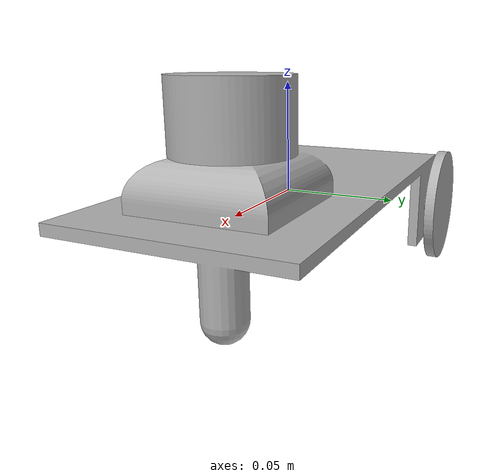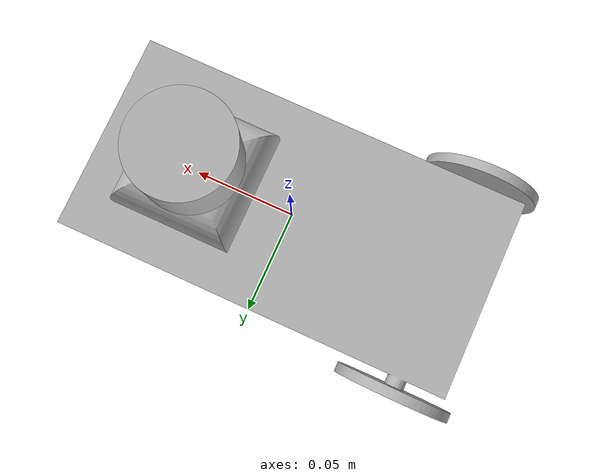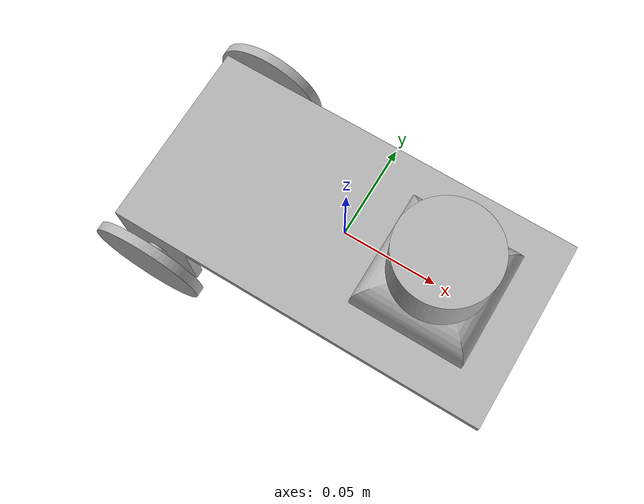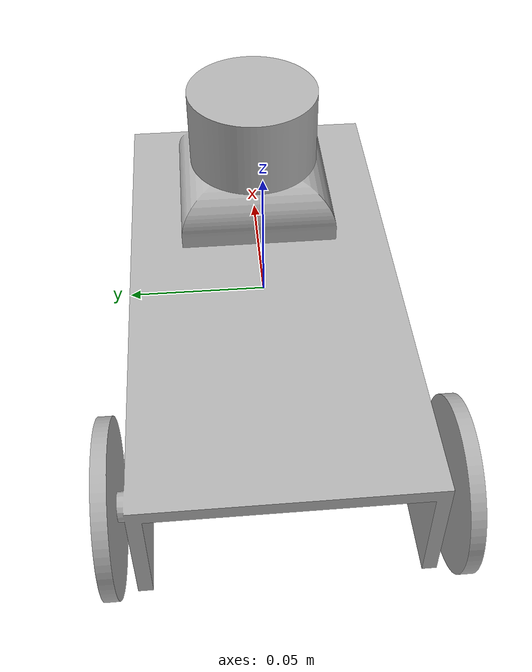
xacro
<?xml version="1.0" ?>
<robot name="testprojectmr" xmlns:xacro="http://www.ros.org/wiki/xacro">

<xacro:include filename="$(find testprojectmr_description)/urdf/materials.xacro" />
<xacro:include filename="$(find testprojectmr_description)/urdf/testprojectmr.trans" />
<xacro:include filename="$(find testprojectmr_description)/urdf/testprojectmr.gazebo" />
<link name="base_link">
  <inertial>
    <origin xyz="0.013575333281833109 -2.3543507324461306e-17 0.002227611071885382" rpy="0 0 0"/>
    <mass value="1.5162425271912718"/>
    <inertia ixx="0.001348" iyy="0.005216" izz="0.006043" ixy="-0.0" iyz="-0.0" ixz="-0.000341"/>
  </inertial>
  <visual>
    <origin xyz="0 0 0" rpy="0 0 0"/>
    <geometry>
      <mesh filename="package://testprojectmr_description/meshes/base_link.stl" scale="0.001 0.001 0.001"/>
    </geometry>
    <material name="silver"/>
  </visual>
  <collision>
    <origin xyz="0 0 0" rpy="0 0 0"/>
    <geometry>
      <mesh filename="package://testprojectmr_description/meshes/base_link.stl" scale="0.001 0.001 0.001"/>
    </geometry>
  </collision>
</link>

<link name="left_1">
  <inertial>
    <origin xyz="0.0 0.0025000000000000022 -3.469446951953614e-18" rpy="0 0 0"/>
    <mass value="0.11097676048805946"/>
    <inertia ixx="2.5e-05" iyy="5e-05" izz="2.5e-05" ixy="0.0" iyz="0.0" ixz="0.0"/>
  </inertial>
  <visual>
    <origin xyz="0.08 -0.055 0.02" rpy="0 0 0"/>
    <geometry>
      <mesh filename="package://testprojectmr_description/meshes/left_1.stl" scale="0.001 0.001 0.001"/>
    </geometry>
    <material name="silver"/>
  </visual>
  <collision>
    <origin xyz="0.08 -0.055 0.02" rpy="0 0 0"/>
    <geometry>
      <mesh filename="package://testprojectmr_description/meshes/left_1.stl" scale="0.001 0.001 0.001"/>
    </geometry>
  </collision>
</link>

<link name="right_1">
  <inertial>
    <origin xyz="-2.7755575615628914e-17 -0.0025000000000000022 -3.469446951953614e-18" rpy="0 0 0"/>
    <mass value="0.11097676048805946"/>
    <inertia ixx="2.5e-05" iyy="5e-05" izz="2.5e-05" ixy="0.0" iyz="0.0" ixz="-0.0"/>
  </inertial>
  <visual>
    <origin xyz="0.08 0.055 0.02" rpy="0 0 0"/>
    <geometry>
      <mesh filename="package://testprojectmr_description/meshes/right_1.stl" scale="0.001 0.001 0.001"/>
    </geometry>
    <material name="silver"/>
  </visual>
  <collision>
    <origin xyz="0.08 0.055 0.02" rpy="0 0 0"/>
    <geometry>
      <mesh filename="package://testprojectmr_description/meshes/right_1.stl" scale="0.001 0.001 0.001"/>
    </geometry>
  </collision>
</link>

<link name="lidar_1">
  <inertial>
    <origin xyz="0.0 4.825019250101691e-18 0.015000000000000006" rpy="0 0 0"/>
    <mass value="0.46240316870024756"/>
    <inertia ixx="0.000107" iyy="0.000107" izz="0.000145" ixy="-0.0" iyz="0.0" ixz="0.0"/>
  </inertial>
  <visual>
    <origin xyz="-0.05 -0.0 -0.025" rpy="0 0 0"/>
    <geometry>
      <mesh filename="package://testprojectmr_description/meshes/lidar_1.stl" scale="0.001 0.001 0.001"/>
    </geometry>
    <material name="silver"/>
  </visual>
  <collision>
    <origin xyz="-0.05 -0.0 -0.025" rpy="0 0 0"/>
    <geometry>
      <mesh filename="package://testprojectmr_description/meshes/lidar_1.stl" scale="0.001 0.001 0.001"/>
    </geometry>
  </collision>
</link>

<joint name="Rev1" type="continuous">
  <origin xyz="-0.08 0.055 -0.02" rpy="0 0 0"/>
  <parent link="base_link"/>
  <child link="left_1"/>
  <axis xyz="0.0 1.0 0.0"/>
</joint>

<joint name="Rev2" type="continuous">
  <origin xyz="-0.08 -0.055 -0.02" rpy="0 0 0"/>
  <parent link="base_link"/>
  <child link="right_1"/>
  <axis xyz="0.0 1.0 0.0"/>
</joint>

<joint name="Rigid3" type="fixed">
  <origin xyz="0.05 0.0 0.025" rpy="0 0 0"/>
  <parent link="base_link"/>
  <child link="lidar_1"/>
</joint>

</robot>

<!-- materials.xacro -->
<robot name="testprojectmr" xmlns:xacro="http://www.ros.org/wiki/xacro" >

<material name="silver">
  <color rgba="0.700 0.700 0.700 1.000"/>
</material>

</robot>

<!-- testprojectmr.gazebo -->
<robot name="testprojectmr" xmlns:xacro="http://www.ros.org/wiki/xacro" >

<xacro:property name="body_color" value="Gazebo/Silver" />

<gazebo>
  <plugin name="control" filename="libgazebo_ros_control.so"/>
</gazebo>
<gazebo reference="base_link">
  <material>${body_color}</material>
  <mu1>3500</mu1>
  <mu2>3500</mu2>
  <selfCollide>true</selfCollide>
  <gravity>true</gravity>
</gazebo>

<gazebo reference="left_1">
  <material>${body_color}</material>
  <mu1>3500</mu1>
  <mu2>3500</mu2>
  <selfCollide>true</selfCollide>
</gazebo>

<gazebo reference="right_1">
  <material>${body_color}</material>
  <mu1>3500</mu1>
  <mu2>3500</mu2>
  <selfCollide>true</selfCollide>
</gazebo>

<gazebo reference="lidar_1">
  <material>${body_color}</material>
  <mu1>0.2</mu1>
  <mu2>0.2</mu2>
  <selfCollide>true</selfCollide>
</gazebo>
  <gazebo>
  <plugin name="differential_drive_controller" filename="libgazebo_ros_diff_drive.so">

    <!-- Plugin update rate in Hz -->
    <updateRate>${1000}</updateRate>

    <!-- Name of left joint, defaults to `left_joint` -->
    <leftJoint>Rev1</leftJoint>

    <!-- Name of right joint, defaults to `right_joint` -->
    <rightJoint>Rev2</rightJoint>

    <!-- The distance from the center of one wheel to the other, in meters, defaults to 0.34 m -->
    <wheelSeparation>0.5380</wheelSeparation>

    <!-- Diameter of the wheels, in meters, defaults to 0.15 m -->
    <wheelDiameter>0.2410</wheelDiameter>

    <!-- Wheel acceleration, in rad/s^2, defaults to 0.0 rad/s^2 -->
    <wheelAcceleration>1.0</wheelAcceleration>

    <!-- Maximum torque which the wheels can produce, in Nm, defaults to 5 Nm -->
    <wheelTorque>20</wheelTorque>

    <!-- Topic to receive geometry_msgs/Twist message commands, defaults to `cmd_vel` -->
    <commandTopic>cmd_vel</commandTopic>

    <!-- Topic to publish nav_msgs/Odometry messages, defaults to `odom` -->
    <odometryTopic>odom</odometryTopic>

    <!-- Odometry frame, defaults to `odom` -->
    <odometryFrame>odom</odometryFrame>

    <!-- Robot frame to calculate odometry from, defaults to `base_footprint` -->
    <robotBaseFrame>base_footprint</robotBaseFrame>

    <!-- Odometry source, 0 for ENCODER, 1 for WORLD, defaults to WORLD -->
    <odometrySource>1</odometrySource>

    <!-- Set to true to publish transforms for the wheel links, defaults to false -->
    <publishWheelTF>true</publishWheelTF>

    <!-- Set to true to publish transforms for the odometry, defaults to true -->
    <publishOdom>true</publishOdom>

    <!-- Set to true to publish sensor_msgs/JointState on /joint_states for the wheel joints, defaults to false -->
    <publishWheelJointState>true</publishWheelJointState>

    <!-- Set to true to swap right and left wheels, defaults to true -->
    <legacyMode>false</legacyMode>
  </plugin>
</gazebo>

</robot>
